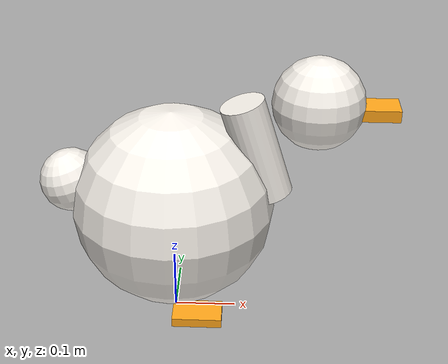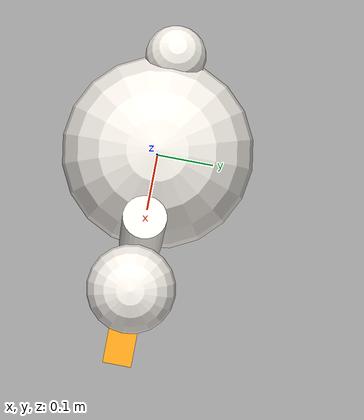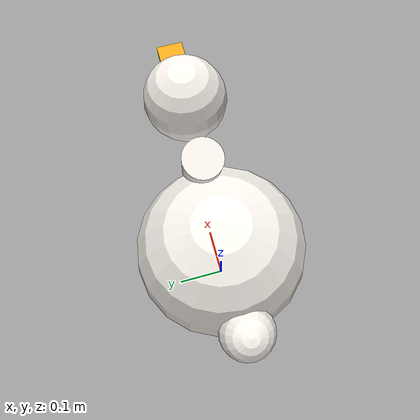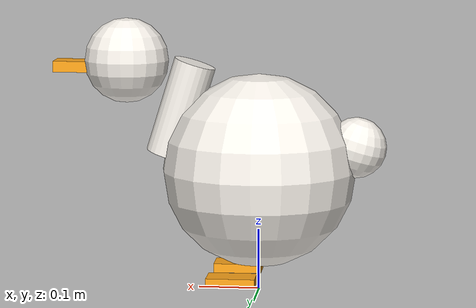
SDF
<?xml version="1.0"?>
<sdf version="1.10">
  <model name="duck">
    <static>true</static>

    <!-- Body (longer, more elongated than chicken — use sphere; differs by head/bill) -->
    <link name="body">
      <pose>0 0 0.20 0 0 0</pose>
      <visual name="v"><geometry><sphere><radius>0.16</radius></sphere></geometry>
        <material><ambient>0.88 0.86 0.82 1</ambient><diffuse>0.97 0.95 0.92 1</diffuse><specular>0.05 0.05 0.05 1</specular></material>
      </visual>
      <collision name="c"><geometry><sphere><radius>0.16</radius></sphere></geometry></collision>
    </link>

    <!-- Tail tip (back, slightly up) -->
    <link name="tail">
      <pose>-0.16 0 0.24 0 -0.3 0</pose>
      <visual name="v"><geometry><sphere><radius>0.05</radius></sphere></geometry>
        <material><ambient>0.88 0.86 0.82 1</ambient><diffuse>0.97 0.95 0.92 1</diffuse></material>
      </visual>
    </link>

    <!-- Neck arched up + forward -->
    <link name="neck">
      <pose>0.13 0 0.30 0 -0.3 0</pose>
      <visual name="v"><geometry><cylinder><radius>0.035</radius><length>0.16</length></cylinder></geometry>
        <material><ambient>0.88 0.86 0.82 1</ambient><diffuse>0.97 0.95 0.92 1</diffuse></material>
      </visual>
    </link>
    <link name="head">
      <pose>0.22 0 0.38 0 0 0</pose>
      <visual name="v"><geometry><sphere><radius>0.07</radius></sphere></geometry>
        <material><ambient>0.88 0.86 0.82 1</ambient><diffuse>0.97 0.95 0.92 1</diffuse></material>
      </visual>
    </link>

    <!-- Flat orange duck bill (wider + flatter than chicken's beak) -->
    <link name="bill">
      <pose>0.30 0 0.37 0 0 0</pose>
      <visual name="v"><geometry><box><size>0.080 0.045 0.018</size></box></geometry>
        <material><ambient>0.90 0.50 0.05 1</ambient><diffuse>1.0 0.65 0.10 1</diffuse></material>
      </visual>
    </link>

    <!-- Eyes -->
    <link name="eye_l">
      <pose>0.245 0.050 0.40 0 0 0</pose>
      <visual name="v"><geometry><sphere><radius>0.008</radius></sphere></geometry>
        <material><ambient>0.05 0.05 0.05 1</ambient><diffuse>0.05 0.05 0.05 1</diffuse></material>
      </visual>
    </link>
    <link name="eye_r">
      <pose>0.245 -0.050 0.40 0 0 0</pose>
      <visual name="v"><geometry><sphere><radius>0.008</radius></sphere></geometry>
        <material><ambient>0.05 0.05 0.05 1</ambient><diffuse>0.05 0.05 0.05 1</diffuse></material>
      </visual>
    </link>

    <!-- Orange webbed feet (flatter than chicken legs) -->
    <link name="foot_l">
      <pose>0.04 0.06 0.025 0 0 0</pose>
      <visual name="v"><geometry><box><size>0.08 0.05 0.015</size></box></geometry>
        <material><ambient>0.90 0.50 0.05 1</ambient><diffuse>1.0 0.65 0.10 1</diffuse></material>
      </visual>
    </link>
    <link name="foot_r">
      <pose>0.04 -0.06 0.025 0 0 0</pose>
      <visual name="v"><geometry><box><size>0.08 0.05 0.015</size></box></geometry>
        <material><ambient>0.90 0.50 0.05 1</ambient><diffuse>1.0 0.65 0.10 1</diffuse></material>
      </visual>
    </link>

    <joint name="j_tail"  type="fixed"><parent>body</parent><child>tail</child></joint>
    <joint name="j_neck"  type="fixed"><parent>body</parent><child>neck</child></joint>
    <joint name="j_head"  type="fixed"><parent>body</parent><child>head</child></joint>
    <joint name="j_bill"  type="fixed"><parent>body</parent><child>bill</child></joint>
    <joint name="j_el"    type="fixed"><parent>body</parent><child>eye_l</child></joint>
    <joint name="j_er"    type="fixed"><parent>body</parent><child>eye_r</child></joint>
    <joint name="j_fl"    type="fixed"><parent>body</parent><child>foot_l</child></joint>
    <joint name="j_fr"    type="fixed"><parent>body</parent><child>foot_r</child></joint>
  </model>
</sdf>
